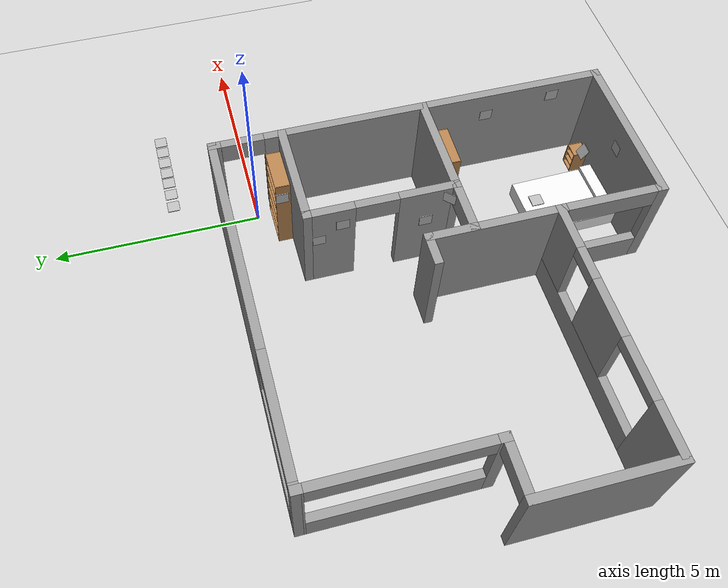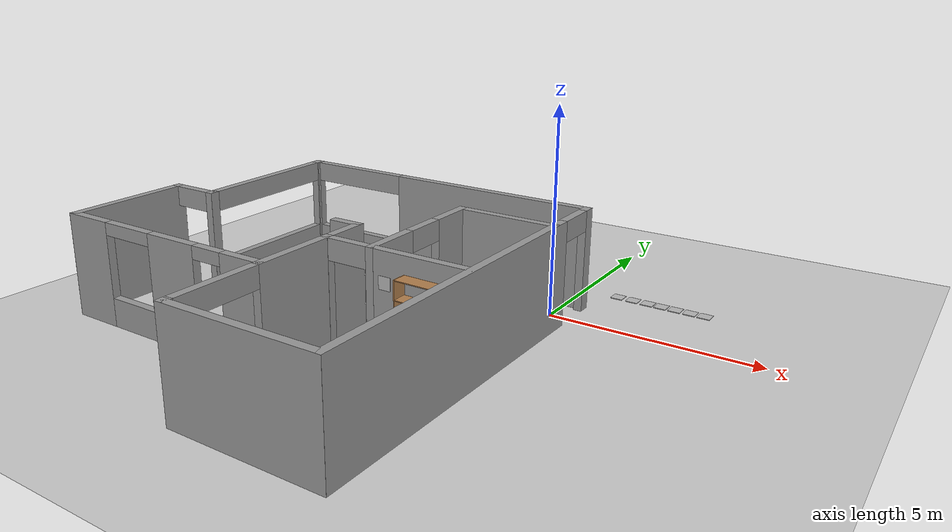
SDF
<sdf version="1.6">
 <world name="GrannyAnnie">
  <model name="ground_plane">
   <static>1</static>
   <link name="link">
    <collision name="collision">
     <geometry><plane><normal>0 0 1</normal><size>100 100</size></plane></geometry>
     <surface><friction><ode><mu>100</mu><mu2>50</mu2></ode></friction></surface>
    </collision>
    <visual name="visual">
     <cast_shadows>0</cast_shadows>
     <geometry><plane><normal>0 0 1</normal><size>100 100</size></plane></geometry>
     <material>
      <script><uri>file://media/materials/scripts/gazebo.material</uri><name>Gazebo/Grey</name></script>
     </material>
    </visual>
    <velocity_decay><linear>0</linear><angular>0</angular></velocity_decay>
   </link>
  </model>
  <model name="tag_3">
   <pose>-2.103 -1.589 2.006 3.14159 -1.57079 3.14159</pose>
   <static>1</static>
   <link name="link">
    <collision name="collision"><geometry><box><size>0.3 0.3 0.02</size></box></geometry></collision>
    <visual name="visual">
     <geometry><box><size>0.3 0.3 0.02</size></box></geometry>
     <material>
      <script><uri>file://tags_material/scripts/tags.material</uri><name>Tag36_11_00003</name></script>
     </material>
    </visual>
   </link>
   <static>0</static>
  </model>
  <model name="tag_5">
   <pose>-0.839 -0.497 1.7 3.14159 -1.57079 3.14159</pose>
   <static>1</static>
   <link name="link">
    <collision name="collision"><geometry><box><size>0.3 0.3 0.02</size></box></geometry></collision>
    <visual name="visual">
     <geometry><box><size>0.3 0.3 0.02</size></box></geometry>
     <material>
      <script><uri>file://tags_material/scripts/tags.material</uri><name>Tag36_11_00005</name></script>
     </material>
    </visual>
   </link>
   <static>0</static>
  </model>
  <model name="tag_7">
   <pose>-2.101 -1.051 1.587 3.14159 -1.57079 3.14159</pose>
   <static>1</static>
   <link name="link">
    <collision name="collision"><geometry><box><size>0.3 0.3 0.02</size></box></geometry></collision>
    <visual name="visual">
     <geometry><box><size>0.3 0.3 0.02</size></box></geometry>
     <material>
      <script><uri>file://tags_material/scripts/tags.material</uri><name>Tag36_11_00007</name></script>
     </material>
    </visual>
   </link>
   <static>0</static>
  </model>
  <model name="tag_8">
   <pose>0.294 -5.82 1.872 3.14159 -1.57079 3.14159</pose>
   <static>1</static>
   <link name="link">
    <collision name="collision"><geometry><box><size>0.3 0.3 0.02</size></box></geometry></collision>
    <visual name="visual">
     <geometry><box><size>0.3 0.3 0.02</size></box></geometry>
     <material>
      <script><uri>file://tags_material/scripts/tags.material</uri><name>Tag36_11_00008</name></script>
     </material>
    </visual>
   </link>
   <static>0</static>
  </model>
  <model name="tag_9">
   <pose>-1.435 -8.478 1.8 1.57079 -1.57079 3.14159</pose>
   <static>1</static>
   <link name="link">
    <collision name="collision"><geometry><box><size>0.3 0.3 0.02</size></box></geometry></collision>
    <visual name="visual">
     <geometry><box><size>0.3 0.3 0.02</size></box></geometry>
     <material>
      <script><uri>file://tags_material/scripts/tags.material</uri><name>Tag36_11_00009</name></script>
     </material>
    </visual>
   </link>
   <static>0</static>
  </model>
  <model name="tag_10">
   <pose>-1.614 -4.295 1.8 -1.57079 -1.57079 3.14159</pose>
   <static>1</static>
   <link name="link">
    <collision name="collision"><geometry><box><size>0.3 0.3 0.02</size></box></geometry></collision>
    <visual name="visual">
     <geometry><box><size>0.3 0.3 0.02</size></box></geometry>
     <material>
      <script><uri>file://tags_material/scripts/tags.material</uri><name>Tag36_11_00010</name></script>
     </material>
    </visual>
   </link>
   <static>0</static>
  </model>
  <model name="tag_13">
   <pose>-2.11 -3.543 1.51 3.14159 -1.57079 3.14159</pose>
   <static>1</static>
   <link name="link">
    <collision name="collision"><geometry><box><size>0.02 0.3 0.3</size></box></geometry></collision>
    <visual name="visual">
     <geometry><box><size>0.3 0.3 0.02</size></box></geometry>
     <material>
      <script><uri>file://tags_material/scripts/tags.material</uri><name>Tag36_11_00013</name></script>
     </material>
    </visual>
   </link>
   <static>0</static>
  </model>
  <model name="tag_18">
   <pose>-1.53973 -6.69 0.496 3.14159 0.003459 3.14159</pose>
   <static>1</static>
   <link name="link">
    <collision name="collision"><geometry><box><size>0.3 0.3 0.02</size></box></geometry></collision>
    <visual name="visual">
     <geometry><box><size>0.3 0.3 0.02</size></box></geometry>
     <material>
      <script><uri>file://tags_material/scripts/tags.material</uri><name>Tag36_11_00018</name></script>
     </material>
    </visual>
   </link>
   <static>0</static>
  </model>
  <model name="tag_20">
   <pose>0.293 -7.471 2.131 3.14159 -1.57079 3.14159</pose>
   <static>1</static>
   <link name="link">
    <collision name="collision"><geometry><box><size>0.3 0.3 0.02</size></box></geometry></collision>
    <visual name="visual">
     <geometry><box><size>0.3 0.3 0.02</size></box></geometry>
     <material>
      <script><uri>file://tags_material/scripts/tags.material</uri><name>Tag36_11_00020</name></script>
     </material>
    </visual>
   </link>
   <static>0</static>
  </model>
  <model name="tag_21">
   <pose>-2.201 -4.003 2.293 2.36727 -1.57079 3.14057</pose>
   <static>1</static>
   <link name="link">
    <collision name="collision"><geometry><box><size>0.3 0.3 0.02</size></box></geometry></collision>
    <visual name="visual">
     <geometry><box><size>0.3 0.3 0.02</size></box></geometry>
     <material>
      <script><uri>file://tags_material/scripts/tags.material</uri><name>Tag36_11_00021</name></script>
     </material>
    </visual>
   </link>
   <static>0</static>
  </model>
  <model name="tag_22">
   <pose>-0.559 -8.289 0.74 0 -1.03 -1.5708</pose>
   <static>1</static>
   <link name="link">
    <collision name="collision"><geometry><box><size>0.3 0.3 0.02</size></box></geometry></collision>
    <visual name="visual">
     <geometry><box><size>0.3 0.3 0.02</size></box></geometry>
     <material>
      <script><uri>file://tags_material/scripts/tags.material</uri><name>Tag36_11_00022</name></script>
     </material>
    </visual>
   </link>
   <static>0</static>
  </model>
  <model name="tag_23">
   <pose>-2.15869 -6.23805 0.109419 -0.788117 0.051906 -0.052114</pose>
   <static>1</static>
   <link name="link">
    <collision name="collision"><geometry><box><size>0.3 0.3 0.02</size></box></geometry></collision>
    <visual name="visual">
     <geometry><box><size>0.3 0.3 0.02</size></box></geometry>
     <material>
      <script><uri>file://tags_material/scripts/tags.material</uri><name>Tag36_11_00023</name></script>
     </material>
    </visual>
   </link>
   <static>0</static>
  </model>
  <model name="tag_24">
   <pose>0.873407 2 0 0 -0 0</pose>
   <static>1</static>
   <link name="link">
    <collision name="collision"><geometry><box><size>0.3 0.3 0.02</size></box></geometry></collision>
    <visual name="visual">
     <geometry><box><size>0.3 0.3 0.02</size></box></geometry>
     <material>
      <script><uri>file://tags_material/scripts/tags.material</uri><name>Tag36_11_00024</name></script>
     </material>
    </visual>
   </link>
   <static>0</static>
  </model>
  <model name="tag_25">
   <pose>1.98268 2 0 0 -0 0</pose>
   <static>1</static>
   <link name="link">
    <collision name="collision"><geometry><box><size>0.3 0.3 0.02</size></box></geometry></collision>
    <visual name="visual">
     <geometry><box><size>0.3 0.3 0.02</size></box></geometry>
     <material>
      <script><uri>file://tags_material/scripts/tags.material</uri><name>Tag36_11_00025</name></script>
     </material>
    </visual>
   </link>
   <static>0</static>
  </model>
  <model name="tag_26">
   <pose>3.04621 2 0 0 -0 0</pose>
   <static>1</static>
   <link name="link">
    <collision name="collision"><geometry><box><size>0.3 0.3 0.02</size></box></geometry></collision>
    <visual name="visual">
     <geometry><box><size>0.3 0.3 0.02</size></box></geometry>
     <material>
      <script><uri>file://tags_material/scripts/tags.material</uri><name>Tag36_11_00026</name></script>
     </material>
    </visual>
   </link>
   <static>0</static>
  </model>
  <model name="tag_27">
   <pose>1.2631 2 0 0 -0 0</pose>
   <static>1</static>
   <link name="link">
    <collision name="collision"><geometry><box><size>0.3 0.3 0.02</size></box></geometry></collision>
    <visual name="visual">
     <geometry><box><size>0.3 0.3 0.02</size></box></geometry>
     <material>
      <script><uri>file://tags_material/scripts/tags.material</uri><name>Tag36_11_00027</name></script>
     </material>
    </visual>
   </link>
   <static>0</static>
  </model>
  <model name="tag_29">
   <pose>2.69424 2 0 0 -0 0</pose>
   <static>1</static>
   <link name="link">
    <collision name="collision"><geometry><box><size>0.3 0.3 0.02</size></box></geometry></collision>
    <visual name="visual">
     <geometry><box><size>0.3 0.3 0.02</size></box></geometry>
     <material>
      <script><uri>file://tags_material/scripts/tags.material</uri><name>Tag36_11_00029</name></script>
     </material>
    </visual>
   </link>
   <static>0</static>
  </model>
  <model name="tag_30">
   <pose>1.64316 2 0 0 -0 0</pose>
   <static>1</static>
   <link name="link">
    <collision name="collision"><geometry><box><size>0.3 0.3 0.02</size></box></geometry></collision>
    <visual name="visual">
     <geometry><box><size>0.3 0.3 0.02</size></box></geometry>
     <material>
      <script><uri>file://tags_material/scripts/tags.material</uri><name>Tag36_11_00030</name></script>
     </material>
    </visual>
   </link>
   <static>0</static>
  </model>
  <model name="tag_31">
   <pose>2.33442 2 0 0 -0 0</pose>
   <static>1</static>
   <link name="link">
    <collision name="collision"><geometry><box><size>0.3 0.3 0.02</size></box></geometry></collision>
    <visual name="visual">
     <geometry><box><size>0.3 0.3 0.02</size></box></geometry>
     <material>
      <script><uri>file://tags_material/scripts/tags.material</uri><name>Tag36_11_00031</name></script>
     </material>
    </visual>
   </link>
   <static>0</static>
  </model>
  <model name="RoCKIn@Home">
   <link name="Wall_12">
    <collision name="Wall_12_Collision">
     <geometry><box><size>2.6 0.2 2.5</size></box></geometry>
     <pose>0 0 1.25 0 -0 0</pose>
    </collision>
    <visual name="Wall_12_Visual">
     <pose>0 0 1.25 0 -0 0</pose>
     <geometry><box><size>2.6 0.2 2.5</size></box></geometry>
     <material>
      <script><uri>file://media/materials/scripts/gazebo.material</uri><name>Gazebo/Grey</name></script>
     </material>
    </visual>
    <velocity_decay><linear>0</linear><angular>0</angular></velocity_decay>
    <pose>7.8 1.205 0 0 -0 1.5708</pose>
   </link>
   <link name="Wall_14">
    <pose>6.0996 2.4048 0 0 -0 3.14159</pose>
    <visual name="Wall_14_Visual_0">
     <pose>-1.20789 0 1.25 0 -0 0</pose>
     <geometry><box><size>1.18422 0.2 2.5</size></box></geometry>
     <material>
      <script><uri>file://media/materials/scripts/gazebo.material</uri><name>Gazebo/Grey</name></script>
     </material>
    </visual>
    <collision name="Wall_14_Collision_0">
     <geometry><box><size>1.18422 0.2 2.5</size></box></geometry>
     <pose>-1.20789 0 1.25 0 -0 0</pose>
    </collision>
    <visual name="Wall_14_Visual_1">
     <pose>1.09211 0 1.25 0 -0 0</pose>
     <geometry><box><size>1.41579 0.2 2.5</size></box></geometry>
     <material>
      <script><uri>file://media/materials/scripts/gazebo.material</uri><name>Gazebo/Grey</name></script>
     </material>
    </visual>
    <collision name="Wall_14_Collision_1">
     <geometry><box><size>1.41579 0.2 2.5</size></box></geometry>
     <pose>1.09211 0 1.25 0 -0 0</pose>
    </collision>
    <visual name="Wall_14_Visual_2">
     <pose>-0.115785 0 2.25 0 -0 0</pose>
     <geometry><box><size>1 0.2 0.5</size></box></geometry>
     <material>
      <script><uri>file://media/materials/scripts/gazebo.material</uri><name>Gazebo/Grey</name></script>
     </material>
    </visual>
    <collision name="Wall_14_Collision_2">
     <geometry><box><size>1 0.2 0.5</size></box></geometry>
     <pose>-0.115785 0 2.25 0 -0 0</pose>
    </collision>
    <velocity_decay><linear>0</linear><angular>0</angular></velocity_decay>
   </link>
   <link name="Wall_16">
    <collision name="Wall_16_Collision">
     <geometry><box><size>2.60492 0.2 2.5</size></box></geometry>
     <pose>0 0 1.25 0 -0 0</pose>
    </collision>
    <visual name="Wall_16_Visual">
     <pose>0 0 1.25 0 -0 0</pose>
     <geometry><box><size>2.60492 0.2 2.5</size></box></geometry>
     <material>
      <script><uri>file://media/materials/scripts/gazebo.material</uri><name>Gazebo/Grey</name></script>
     </material>
    </visual>
    <velocity_decay><linear>0</linear><angular>0</angular></velocity_decay>
    <pose>4.39903 1.20277 0 0 -0 1.5708</pose>
   </link>
   <link name="Wall_18">
    <collision name="Wall_18_Collision">
     <geometry><box><size>3.8 0.2 2.5</size></box></geometry>
     <pose>0 0 1.25 0 -0 0</pose>
    </collision>
    <visual name="Wall_18_Visual">
     <pose>0 0 1.25 0 -0 0</pose>
     <geometry><box><size>3.8 0.2 2.5</size></box></geometry>
     <material>
      <script><uri>file://media/materials/scripts/gazebo.material</uri><name>Gazebo/Grey</name></script>
     </material>
    </visual>
    <velocity_decay><linear>0</linear><angular>0</angular></velocity_decay>
    <pose>0.024876 1.80003 0 0 -0 1.5708</pose>
   </link>
   <link name="Wall_2">
    <pose>4.7266 0 0 0 -0 0</pose>
    <visual name="Wall_2_Visual_0">
     <pose>-0.649274 0 1.25 0 -0 0</pose>
     <geometry><box><size>8.30145 0.2 2.5</size></box></geometry>
     <material>
      <script><uri>file://media/materials/scripts/gazebo.material</uri><name>Gazebo/Grey</name></script>
     </material>
    </visual>
    <collision name="Wall_2_Collision_0">
     <geometry><box><size>8.30145 0.2 2.5</size></box></geometry>
     <pose>-0.649274 0 1.25 0 -0 0</pose>
    </collision>
    <visual name="Wall_2_Visual_1">
     <pose>4.65073 0 1.25 0 -0 0</pose>
     <geometry><box><size>0.298547 0.2 2.5</size></box></geometry>
     <material>
      <script><uri>file://media/materials/scripts/gazebo.material</uri><name>Gazebo/Grey</name></script>
     </material>
    </visual>
    <collision name="Wall_2_Collision_1">
     <geometry><box><size>0.298547 0.2 2.5</size></box></geometry>
     <pose>4.65073 0 1.25 0 -0 0</pose>
    </collision>
    <visual name="Wall_2_Visual_2">
     <pose>4.00145 0 2.25 0 -0 0</pose>
     <geometry><box><size>1 0.2 0.5</size></box></geometry>
     <material>
      <script><uri>file://media/materials/scripts/gazebo.material</uri><name>Gazebo/Grey</name></script>
     </material>
    </visual>
    <collision name="Wall_2_Collision_2">
     <geometry><box><size>1 0.2 0.5</size></box></geometry>
     <pose>4.00145 0 2.25 0 -0 0</pose>
    </collision>
    <velocity_decay><linear>0</linear><angular>0</angular></velocity_decay>
   </link>
   <link name="Wall_20">
    <pose>2.72456 3.60059 0 0 -0 0</pose>
    <visual name="Wall_20_Visual_0">
     <pose>-2.67396 0 1.25 0 -0 0</pose>
     <geometry><box><size>0.251208 0.2 2.5</size></box></geometry>
     <material>
      <script><uri>file://media/materials/scripts/gazebo.material</uri><name>Gazebo/Grey</name></script>
     </material>
    </visual>
    <collision name="Wall_20_Collision_0">
     <geometry><box><size>0.251208 0.2 2.5</size></box></geometry>
     <pose>-2.67396 0 1.25 0 -0 0</pose>
    </collision>
    <visual name="Wall_20_Visual_1">
     <pose>1.1766 0 1.25 0 -0 0</pose>
     <geometry><box><size>3.24591 0.2 2.5</size></box></geometry>
     <material>
      <script><uri>file://media/materials/scripts/gazebo.material</uri><name>Gazebo/Grey</name></script>
     </material>
    </visual>
    <collision name="Wall_20_Collision_1">
     <geometry><box><size>3.24591 0.2 2.5</size></box></geometry>
     <pose>1.1766 0 1.25 0 -0 0</pose>
    </collision>
    <visual name="Wall_20_Visual_2">
     <pose>-1.49735 0 2.25 0 -0 0</pose>
     <geometry><box><size>2.102 0.2 0.5</size></box></geometry>
     <material>
      <script><uri>file://media/materials/scripts/gazebo.material</uri><name>Gazebo/Grey</name></script>
     </material>
    </visual>
    <collision name="Wall_20_Collision_2">
     <geometry><box><size>2.102 0.2 0.5</size></box></geometry>
     <pose>-1.49735 0 2.25 0 -0 0</pose>
    </collision>
    <visual name="Wall_20_Visual_3">
     <pose>-1.49735 0 0.35 0 -0 0</pose>
     <geometry><box><size>2.102 0.2 0.7</size></box></geometry>
     <material>
      <script><uri>file://media/materials/scripts/gazebo.material</uri><name>Gazebo/Grey</name></script>
     </material>
    </visual>
    <collision name="Wall_20_Collision_3">
     <geometry><box><size>2.102 0.2 0.3</size></box></geometry>
     <pose>-1.49735 0 0.35 0 -0 0</pose>
    </collision>
    <velocity_decay><linear>0</linear><angular>0</angular></velocity_decay>
   </link>
   <link name="Wall_22">
    <pose>4.39856 3.00206 0 0 -0 1.5708</pose>
    <visual name="Wall_22_Visual_0">
     <pose>-0.601085 0 1.25 0 -0 0</pose>
     <geometry><box><size>0.194709 0.2 2.5</size></box></geometry>
     <material>
      <script><uri>file://media/materials/scripts/gazebo.material</uri><name>Gazebo/Grey</name></script>
     </material>
    </visual>
    <collision name="Wall_22_Collision_0">
     <geometry><box><size>0.194709 0.2 2.5</size></box></geometry>
     <pose>-0.601085 0 1.25 0 -0 0</pose>
    </collision>
    <visual name="Wall_22_Visual_1">
     <pose>0.597355 0 1.25 0 -0 0</pose>
     <geometry><box><size>0.202171 0.2 2.5</size></box></geometry>
     <material>
      <script><uri>file://media/materials/scripts/gazebo.material</uri><name>Gazebo/Grey</name></script>
     </material>
    </visual>
    <collision name="Wall_22_Collision_1">
     <geometry><box><size>0.202171 0.2 2.5</size></box></geometry>
     <pose>0.597355 0 1.25 0 -0 0</pose>
    </collision>
    <visual name="Wall_22_Visual_2">
     <pose>-0.003731 0 2.25 0 -0 0</pose>
     <geometry><box><size>1 0.2 0.5</size></box></geometry>
     <material>
      <script><uri>file://media/materials/scripts/gazebo.material</uri><name>Gazebo/Grey</name></script>
     </material>
    </visual>
    <collision name="Wall_22_Collision_2">
     <geometry><box><size>1 0.2 0.5</size></box></geometry>
     <pose>-0.003731 0 2.25 0 -0 0</pose>
    </collision>
    <velocity_decay><linear>0</linear><angular>0</angular></velocity_decay>
   </link>
   <link name="Wall_24">
    <pose>7.42703 8.20242 0 0 -0 3.14159</pose>
    <visual name="Wall_24_Visual_0">
     <pose>-1.97924 0 1.25 0 -0 0</pose>
     <geometry><box><size>0.241529 0.2 2.5</size></box></geometry>
     <material>
      <script><uri>file://media/materials/scripts/gazebo.material</uri><name>Gazebo/Grey</name></script>
     </material>
    </visual>
    <collision name="Wall_24_Collision_0">
     <geometry><box><size>0.241529 0.2 2.5</size></box></geometry>
     <pose>-1.97924 0 1.25 0 -0 0</pose>
    </collision>
    <visual name="Wall_24_Visual_1">
     <pose>1.97395 0 1.25 0 -0 0</pose>
     <geometry><box><size>0.252091 0.2 2.5</size></box></geometry>
     <material>
      <script><uri>file://media/materials/scripts/gazebo.material</uri><name>Gazebo/Grey</name></script>
     </material>
    </visual>
    <collision name="Wall_24_Collision_1">
     <geometry><box><size>0.252091 0.2 2.5</size></box></geometry>
     <pose>1.97395 0 1.25 0 -0 0</pose>
    </collision>
    <visual name="Wall_24_Visual_2">
     <pose>-0.005281 0 2.25 0 -0 0</pose>
     <geometry><box><size>3.70638 0.2 0.5</size></box></geometry>
     <material>
      <script><uri>file://media/materials/scripts/gazebo.material</uri><name>Gazebo/Grey</name></script>
     </material>
    </visual>
    <collision name="Wall_24_Collision_2">
     <geometry><box><size>3.70638 0.2 0.5</size></box></geometry>
     <pose>-0.005281 0 2.25 0 -0 0</pose>
    </collision>
    <visual name="Wall_24_Visual_3">
     <pose>-0.005281 0 0.35 0 -0 0</pose>
     <geometry><box><size>3.70638 0.2 0.7</size></box></geometry>
     <material>
      <script><uri>file://media/materials/scripts/gazebo.material</uri><name>Gazebo/Grey</name></script>
     </material>
    </visual>
    <collision name="Wall_24_Collision_3">
     <geometry><box><size>3.70638 0.2 0.7</size></box></geometry>
     <pose>-0.005281 0 0.35 0 -0 0</pose>
    </collision>
    <velocity_decay><linear>0</linear><angular>0</angular></velocity_decay>
   </link>
   <link name="Wall_28">
    <collision name="Wall_28_Collision">
     <geometry><box><size>3.2 0.2 2.5</size></box></geometry>
     <pose>0 0 1.25 0 -0 0</pose>
    </collision>
    <visual name="Wall_28_Visual">
     <pose>0 0 1.25 0 -0 0</pose>
     <geometry><box><size>3.2 0.2 2.5</size></box></geometry>
     <material>
      <script><uri>file://media/materials/scripts/gazebo.material</uri><name>Gazebo/Grey</name></script>
     </material>
    </visual>
    <velocity_decay><linear>0</linear><angular>0</angular></velocity_decay>
    <pose>3.92571 9.40229 0 0 -0 3.14159</pose>
   </link>
   <link name="Wall_30">
    <pose>2.42541 6.50159 0 0 0 -1.5708</pose>
    <visual name="Wall_30_Visual_0">
     <pose>-2.363 0 1.25 0 -0 0</pose>
     <geometry><box><size>1.27269 0.2 2.5</size></box></geometry>
     <material>
      <script><uri>file://media/materials/scripts/gazebo.material</uri><name>Gazebo/Grey</name></script>
     </material>
    </visual>
    <collision name="Wall_30_Collision_0">
     <geometry><box><size>1.27269 0.2 2.5</size></box></geometry>
     <pose>-2.363 0 1.25 0 -0 0</pose>
    </collision>
    <visual name="Wall_30_Visual_1">
     <pose>0.636346 0 0.35 0 -0 0</pose>
     <geometry><box><size>4.726 0.2 0.7</size></box></geometry>
     <material>
      <script><uri>file://media/materials/scripts/gazebo.material</uri><name>Gazebo/Grey</name></script>
     </material>
    </visual>
    <collision name="Wall_30_Collision_1">
     <geometry><box><size>4.726 0.2 0.7</size></box></geometry>
     <pose>0.636346 0 0.35 0 -0 0</pose>
    </collision>
    <visual name="Wall_30_Visual_2">
     <pose>0.36359 0 1.6 0 -0 0</pose>
     <geometry><box><size>1.38049 0.2 1.8</size></box></geometry>
     <material>
      <script><uri>file://media/materials/scripts/gazebo.material</uri><name>Gazebo/Grey</name></script>
     </material>
    </visual>
    <collision name="Wall_30_Collision_2">
     <geometry><box><size>1.38049 0.2 1.8</size></box></geometry>
     <pose>0.36359 0 1.6 0 -0 0</pose>
    </collision>
    <visual name="Wall_30_Visual_3">
     <pose>2.42659 0 1.6 0 -0 0</pose>
     <geometry><box><size>1.14551 0.2 1.8</size></box></geometry>
     <material>
      <script><uri>file://media/materials/scripts/gazebo.material</uri><name>Gazebo/Grey</name></script>
     </material>
    </visual>
    <collision name="Wall_30_Collision_3">
     <geometry><box><size>1.14551 0.2 1.8</size></box></geometry>
     <pose>2.42659 0 1.6 0 -0 0</pose>
    </collision>
    <visual name="Wall_30_Visual_4">
     <pose>-1.02665 0 2.35 0 -0 0</pose>
     <geometry><box><size>1.4 0.2 0.3</size></box></geometry>
     <material>
      <script><uri>file://media/materials/scripts/gazebo.material</uri><name>Gazebo/Grey</name></script>
     </material>
    </visual>
    <collision name="Wall_30_Collision_4">
     <geometry><box><size>1.4 0.2 0.3</size></box></geometry>
     <pose>-1.02665 0 2.35 0 -0 0</pose>
    </collision>
    <visual name="Wall_30_Visual_5">
     <pose>1.45383 0 2.35 0 -0 0</pose>
     <geometry><box><size>0.8 0.2 0.3</size></box></geometry>
     <material>
      <script><uri>file://media/materials/scripts/gazebo.material</uri><name>Gazebo/Grey</name></script>
     </material>
    </visual>
    <collision name="Wall_30_Collision_5">
     <geometry><box><size>0.8 0.2 0.3</size></box></geometry>
     <pose>1.45383 0 2.35 0 -0 0</pose>
    </collision>
    <velocity_decay><linear>0</linear><angular>0</angular></velocity_decay>
   </link>
   <link name="Wall_32">
    <pose>5.42654 8.80216 0 0 0 -1.5708</pose>
    <visual name="Wall_32_Visual_0">
     <pose>-0.599775 0 1.25 0 -0 0</pose>
     <geometry><box><size>0.199231 0.2 2.5</size></box></geometry>
     <material>
      <script><uri>file://media/materials/scripts/gazebo.material</uri><name>Gazebo/Grey</name></script>
     </material>
    </visual>
    <collision name="Wall_32_Collision_0">
     <geometry><box><size>0.199231 0.2 2.5</size></box></geometry>
     <pose>-0.599775 0 1.25 0 -0 0</pose>
    </collision>
    <visual name="Wall_32_Visual_1">
     <pose>0.599615 0 1.25 0 -0 0</pose>
     <geometry><box><size>0.199549 0.2 2.5</size></box></geometry>
     <material>
      <script><uri>file://media/materials/scripts/gazebo.material</uri><name>Gazebo/Grey</name></script>
     </material>
    </visual>
    <collision name="Wall_32_Collision_1">
     <geometry><box><size>0.199549 0.2 2.5</size></box></geometry>
     <pose>0.599615 0 1.25 0 -0 0</pose>
    </collision>
    <visual name="Wall_32_Visual_2">
     <pose>-0.000159 0 2.25 0 -0 0</pose>
     <geometry><box><size>1 0.2 0.5</size></box></geometry>
     <material>
      <script><uri>file://media/materials/scripts/gazebo.material</uri><name>Gazebo/Grey</name></script>
     </material>
    </visual>
    <collision name="Wall_32_Collision_2">
     <geometry><box><size>1 0.2 0.5</size></box></geometry>
     <pose>-0.000159 0 2.25 0 -0 0</pose>
    </collision>
    <velocity_decay><linear>0</linear><angular>0</angular></velocity_decay>
   </link>
   <link name="Wall_35">
    <collision name="Wall_35_Collision">
     <geometry><box><size>0.8 0.2 2.5</size></box></geometry>
     <pose>0 0 1.25 0 -0 0</pose>
    </collision>
    <visual name="Wall_35_Visual">
     <pose>0 0 1.25 0 -0 0</pose>
     <geometry><box><size>0.8 0.2 2.5</size></box></geometry>
     <material>
      <script><uri>file://media/materials/scripts/gazebo.material</uri><name>Gazebo/Grey</name></script>
     </material>
    </visual>
    <velocity_decay><linear>0</linear><angular>0</angular></velocity_decay>
    <pose>5.42451 3.90082 0 0 -0 1.5708</pose>
   </link>
   <link name="Wall_8">
    <pose>9.42875 4.1026 0 0 -0 1.5708</pose>
    <visual name="Wall_8_Visual_0">
     <pose>-1.48935 0 1.25 0 -0 0</pose>
     <geometry><box><size>5.42201 0.2 2.5</size></box></geometry>
     <material>
      <script><uri>file://media/materials/scripts/gazebo.material</uri><name>Gazebo/Grey</name></script>
     </material>
    </visual>
    <collision name="Wall_8_Collision_0">
     <geometry><box><size>5.42201 0.2 2.5</size></box></geometry>
     <pose>-1.48935 0 1.25 0 -0 0</pose>
    </collision>
    <visual name="Wall_8_Visual_1">
     <pose>4.07465 0 1.25 0 -0 0</pose>
     <geometry><box><size>0.251416 0.2 2.5</size></box></geometry>
     <material>
      <script><uri>file://media/materials/scripts/gazebo.material</uri><name>Gazebo/Grey</name></script>
     </material>
    </visual>
    <collision name="Wall_8_Collision_1">
     <geometry><box><size>0.251416 0.2 2.5</size></box></geometry>
     <pose>4.07465 0 1.25 0 -0 0</pose>
    </collision>
    <visual name="Wall_8_Visual_2">
     <pose>2.5853 0 2.25 0 -0 0</pose>
     <geometry><box><size>2.72728 0.2 0.5</size></box></geometry>
     <material>
      <script><uri>file://media/materials/scripts/gazebo.material</uri><name>Gazebo/Grey</name></script>
     </material>
    </visual>
    <collision name="Wall_8_Collision_2">
     <geometry><box><size>2.72728 0.2 0.5</size></box></geometry>
     <pose>2.5853 0 2.25 0 -0 0</pose>
    </collision>
    <visual name="Wall_8_Visual_3">
     <pose>2.5853 0 0.35 0 -0 0</pose>
     <geometry><box><size>2.72728 0.2 0.7</size></box></geometry>
     <material>
      <script><uri>file://media/materials/scripts/gazebo.material</uri><name>Gazebo/Grey</name></script>
     </material>
    </visual>
    <collision name="Wall_8_Collision_3">
     <geometry><box><size>2.72728 0.2 0.7</size></box></geometry>
     <pose>2.5853 0 0.35 0 -0 0</pose>
    </collision>
    <velocity_decay><linear>0</linear><angular>0</angular></velocity_decay>
   </link>
   <static>1</static>
   <pose>0.4 -8.6 0 0 -0 1.57</pose>
  </model>
  <model name="estanteria_1">
   <link name="estanteria_link">
    <inertial>
     <pose>0 0 1.046 0 -0 0</pose>
     <mass>10</mass>
     <inertia><ixx>3.12544</ixx><ixy>0</ixy><ixz>0</ixz><iyy>4.16584</iyy><iyz>0</iyz><izz>1.1204</izz></inertia>
    </inertial>
    <collision name="estanteria_link_collision">
     <pose>0 0 0.01 0 -0 0</pose>
     <geometry><box><size>1 0.35 0.02</size></box></geometry>
     <surface><friction><ode><mu>1</mu><mu2>1</mu2></ode></friction></surface>
    </collision>
    <collision name="estanteria_link_collision_basal_1_link">
     <pose>0 0 0.41 0 -0 0</pose>
     <geometry><box><size>1 0.35 0.02</size></box></geometry>
     <surface><friction><ode><mu>1</mu><mu2>1</mu2></ode></friction></surface>
     <surface><friction><ode><mu>1</mu><mu2>1</mu2></ode></friction></surface>
    </collision>
    <collision name="estanteria_link_collision_basal_2_link">
     <pose>0 0 0.83 0 -0 0</pose>
     <geometry><box><size>1 0.35 0.02</size></box></geometry>
     <surface><friction><ode><mu>1</mu><mu2>1</mu2></ode></friction></surface>
     <surface><friction><ode><mu>1</mu><mu2>1</mu2></ode></friction></surface>
    </collision>
    <collision name="estanteria_link_collision_basal_3_link">
     <pose>0 0 1.25 0 -0 0</pose>
     <geometry><box><size>1 0.35 0.02</size></box></geometry>
     <surface><friction><ode><mu>1</mu><mu2>1</mu2></ode></friction></surface>
     <surface><friction><ode><mu>1</mu><mu2>1</mu2></ode></friction></surface>
    </collision>
    <collision name="estanteria_link_collision_basal_4_link">
     <pose>0 0 1.67 0 -0 0</pose>
     <geometry><box><size>1 0.35 0.02</size></box></geometry>
     <surface><friction><ode><mu>1</mu><mu2>1</mu2></ode></friction></surface>
     <surface><friction><ode><mu>1</mu><mu2>1</mu2></ode></friction></surface>
    </collision>
    <collision name="estanteria_link_collision_basal_5_link">
     <pose>0 0 2.09 0 -0 0</pose>
     <geometry><box><size>1 0.35 0.02</size></box></geometry>
     <surface><friction><ode><mu>1</mu><mu2>1</mu2></ode></friction></surface>
     <surface><friction><ode><mu>1</mu><mu2>1</mu2></ode></friction></surface>
    </collision>
    <collision name="estanteria_link_collision_lateral_1_link">
     <pose>0.51 0 1.05 0 -0 0</pose>
     <geometry><box><size>0.02 0.35 2.1</size></box></geometry>
     <surface><friction><ode><mu>1</mu><mu2>1</mu2></ode></friction></surface>
     <surface><friction><ode><mu>1</mu><mu2>1</mu2></ode></friction></surface>
    </collision>
    <collision name="estanteria_link_collision_lateral_2_link">
     <pose>-0.51 0 1.05 0 -0 0</pose>
     <geometry><box><size>0.02 0.35 2.1</size></box></geometry>
     <surface><friction><ode><mu>1</mu><mu2>1</mu2></ode></friction></surface>
     <surface><friction><ode><mu>1</mu><mu2>1</mu2></ode></friction></surface>
    </collision>
    <visual name="estanteria_link_visual">
     <pose>0 0 0.01 0 -0 0</pose>
     <geometry><box><size>1 0.35 0.02</size></box></geometry>
     <material><script><name>Gazebo/Wood</name><uri>__default__</uri></script></material>
    </visual>
    <visual name="estanteria_link_visual_basal_1_link">
     <pose>0 0 0.41 0 -0 0</pose>
     <geometry><box><size>1 0.35 0.02</size></box></geometry>
     <material><script><name>Gazebo/Wood</name><uri>__default__</uri></script></material>
    </visual>
    <visual name="estanteria_link_visual_basal_2_link">
     <pose>0 0 0.83 0 -0 0</pose>
     <geometry><box><size>1 0.35 0.02</size></box></geometry>
     <material><script><name>Gazebo/Wood</name><uri>__default__</uri></script></material>
    </visual>
    <visual name="estanteria_link_visual_basal_3_link">
     <pose>0 0 1.25 0 -0 0</pose>
     <geometry><box><size>1 0.35 0.02</size></box></geometry>
     <material><script><name>Gazebo/Wood</name><uri>__default__</uri></script></material>
    </visual>
    <visual name="estanteria_link_visual_basal_4_link">
     <pose>0 0 1.67 0 -0 0</pose>
     <geometry><box><size>1 0.35 0.02</size></box></geometry>
     <material><script><name>Gazebo/Wood</name><uri>__default__</uri></script></material>
    </visual>
    <visual name="estanteria_link_visual_basal_5_link">
     <pose>0 0 2.09 0 -0 0</pose>
     <geometry><box><size>1 0.35 0.02</size></box></geometry>
     <material><script><name>Gazebo/Wood</name><uri>__default__</uri></script></material>
    </visual>
    <visual name="estanteria_link_visual_lateral_1_link">
     <pose>0.51 0 1.05 0 -0 0</pose>
     <geometry><box><size>0.02 0.35 2.1</size></box></geometry>
     <material><script><name>Gazebo/Wood</name><uri>__default__</uri></script></material>
    </visual>
    <visual name="estanteria_link_visual_lateral_2_link">
     <pose>-0.51 0 1.05 0 -0 0</pose>
     <geometry><box><size>0.02 0.35 2.1</size></box></geometry>
     <material><script><name>Gazebo/Wood</name><uri>__default__</uri></script></material>
    </visual>
    <velocity_decay><linear>0</linear><angular>0</angular></velocity_decay>
    <velocity_decay><linear>0</linear><angular>0</angular></velocity_decay>
    <velocity_decay><linear>0</linear><angular>0</angular></velocity_decay>
    <velocity_decay><linear>0</linear><angular>0</angular></velocity_decay>
    <velocity_decay><linear>0</linear><angular>0</angular></velocity_decay>
    <velocity_decay><linear>0</linear><angular>0</angular></velocity_decay>
    <velocity_decay><linear>0</linear><angular>0</angular></velocity_decay>
    <velocity_decay><linear>0</linear><angular>0</angular></velocity_decay>
    <self_collide>1</self_collide>
   </link>
   <pose>-0.300683 -0.520366 3.9e-05 1.6e-05 7.3e-05 0.002372</pose>
   <static>0</static>
  </model>
  <model name="estanteria_2">
   <link name="estanteria_link">
    <inertial>
     <pose>0 0 1.046 0 -0 0</pose>
     <mass>10</mass>
     <inertia><ixx>3.12544</ixx><ixy>0</ixy><ixz>0</ixz><iyy>4.16584</iyy><iyz>0</iyz><izz>1.1204</izz></inertia>
    </inertial>
    <collision name="estanteria_link_collision">
     <pose>0 0 0.01 0 -0 0</pose>
     <geometry><box><size>1 0.35 0.02</size></box></geometry>
     <surface><friction><ode><mu>1</mu><mu2>1</mu2></ode></friction></surface>
    </collision>
    <collision name="estanteria_link_collision_basal_1_link">
     <pose>0 0 0.41 0 -0 0</pose>
     <geometry><box><size>1 0.35 0.02</size></box></geometry>
     <surface><friction><ode><mu>1</mu><mu2>1</mu2></ode></friction></surface>
     <surface><friction><ode><mu>1</mu><mu2>1</mu2></ode></friction></surface>
    </collision>
    <collision name="estanteria_link_collision_basal_2_link">
     <pose>0 0 0.83 0 -0 0</pose>
     <geometry><box><size>1 0.35 0.02</size></box></geometry>
     <surface><friction><ode><mu>1</mu><mu2>1</mu2></ode></friction></surface>
     <surface><friction><ode><mu>1</mu><mu2>1</mu2></ode></friction></surface>
    </collision>
    <collision name="estanteria_link_collision_basal_3_link">
     <pose>0 0 1.25 0 -0 0</pose>
     <geometry><box><size>1 0.35 0.02</size></box></geometry>
     <surface><friction><ode><mu>1</mu><mu2>1</mu2></ode></friction></surface>
     <surface><friction><ode><mu>1</mu><mu2>1</mu2></ode></friction></surface>
    </collision>
    <collision name="estanteria_link_collision_basal_4_link">
     <pose>0 0 1.67 0 -0 0</pose>
     <geometry><box><size>1 0.35 0.02</size></box></geometry>
     <surface><friction><ode><mu>1</mu><mu2>1</mu2></ode></friction></surface>
     <surface><friction><ode><mu>1</mu><mu2>1</mu2></ode></friction></surface>
    </collision>
    <collision name="estanteria_link_collision_basal_5_link">
     <pose>0 0 2.09 0 -0 0</pose>
     <geometry><box><size>1 0.35 0.02</size></box></geometry>
     <surface><friction><ode><mu>1</mu><mu2>1</mu2></ode></friction></surface>
     <surface><friction><ode><mu>1</mu><mu2>1</mu2></ode></friction></surface>
    </collision>
    <collision name="estanteria_link_collision_lateral_1_link">
     <pose>0.51 0 1.05 0 -0 0</pose>
     <geometry><box><size>0.02 0.35 2.1</size></box></geometry>
     <surface><friction><ode><mu>1</mu><mu2>1</mu2></ode></friction></surface>
     <surface><friction><ode><mu>1</mu><mu2>1</mu2></ode></friction></surface>
    </collision>
    <collision name="estanteria_link_collision_lateral_2_link">
     <pose>-0.51 0 1.05 0 -0 0</pose>
     <geometry><box><size>0.02 0.35 2.1</size></box></geometry>
     <surface><friction><ode><mu>1</mu><mu2>1</mu2></ode></friction></surface>
     <surface><friction><ode><mu>1</mu><mu2>1</mu2></ode></friction></surface>
    </collision>
    <visual name="estanteria_link_visual">
     <pose>0 0 0.01 0 -0 0</pose>
     <geometry><box><size>1 0.35 0.02</size></box></geometry>
     <material><script><name>Gazebo/Wood</name><uri>__default__</uri></script></material>
    </visual>
    <visual name="estanteria_link_visual_basal_1_link">
     <pose>0 0 0.41 0 -0 0</pose>
     <geometry><box><size>1 0.35 0.02</size></box></geometry>
     <material><script><name>Gazebo/Wood</name><uri>__default__</uri></script></material>
    </visual>
    <visual name="estanteria_link_visual_basal_2_link">
     <pose>0 0 0.83 0 -0 0</pose>
     <geometry><box><size>1 0.35 0.02</size></box></geometry>
     <material><script><name>Gazebo/Wood</name><uri>__default__</uri></script></material>
    </visual>
    <visual name="estanteria_link_visual_basal_3_link">
     <pose>0 0 1.25 0 -0 0</pose>
     <geometry><box><size>1 0.35 0.02</size></box></geometry>
     <material><script><name>Gazebo/Wood</name><uri>__default__</uri></script></material>
    </visual>
    <visual name="estanteria_link_visual_basal_4_link">
     <pose>0 0 1.67 0 -0 0</pose>
     <geometry><box><size>1 0.35 0.02</size></box></geometry>
     <material><script><name>Gazebo/Wood</name><uri>__default__</uri></script></material>
    </visual>
    <visual name="estanteria_link_visual_basal_5_link">
     <pose>0 0 2.09 0 -0 0</pose>
     <geometry><box><size>1 0.35 0.02</size></box></geometry>
     <material><script><name>Gazebo/Wood</name><uri>__default__</uri></script></material>
    </visual>
    <visual name="estanteria_link_visual_lateral_1_link">
     <pose>0.51 0 1.05 0 -0 0</pose>
     <geometry><box><size>0.02 0.35 2.1</size></box></geometry>
     <material><script><name>Gazebo/Wood</name><uri>__default__</uri></script></material>
    </visual>
    <visual name="estanteria_link_visual_lateral_2_link">
     <pose>-0.51 0 1.05 0 -0 0</pose>
     <geometry><box><size>0.02 0.35 2.1</size></box></geometry>
     <material><script><name>Gazebo/Wood</name><uri>__default__</uri></script></material>
    </visual>
    <velocity_decay><linear>0</linear><angular>0</angular></velocity_decay>
    <velocity_decay><linear>0</linear><angular>0</angular></velocity_decay>
    <velocity_decay><linear>0</linear><angular>0</angular></velocity_decay>
    <velocity_decay><linear>0</linear><angular>0</angular></velocity_decay>
    <velocity_decay><linear>0</linear><angular>0</angular></velocity_decay>
    <velocity_decay><linear>0</linear><angular>0</angular></velocity_decay>
    <velocity_decay><linear>0</linear><angular>0</angular></velocity_decay>
    <velocity_decay><linear>0</linear><angular>0</angular></velocity_decay>
    <self_collide>1</self_collide>
   </link>
   <pose>-0.599085 -4.50116 3.9e-05 -1.6e-05 7.3e-05 -0.016772</pose>
   <static>0</static>
  </model>
  <model name="cama">
   <link name="cama_link">
    <inertial>
     <pose>0.017647 0 0.204902 0 -0 0</pose>
     <mass>51</mass>
     <inertia>
      <ixx>10.1613</ixx>
      <ixy>0</ixy>
      <ixz>-0.220588</ixz>
      <iyy>10.9554</iyy>
      <iyz>0</iyz>
      <izz>10.8941</izz>
     </inertia>
    </inertial>
    <collision name="cama_link_collision">
     <pose>0 0 0.2 0 -0 0</pose>
     <geometry><box><size>2.1 1.5 0.4</size></box></geometry>
     <surface><friction><ode><mu>1</mu><mu2>1</mu2></ode></friction></surface>
    </collision>
    <collision name="cama_link_collision_almohada_link">
     <pose>0.9 0 0.45 0 -0 0</pose>
     <geometry><box><size>0.3 1.5 0.1</size></box></geometry>
     <surface><friction><ode><mu>1</mu><mu2>1</mu2></ode></friction></surface>
     <surface><friction><ode><mu>1</mu><mu2>1</mu2></ode></friction></surface>
    </collision>
    <visual name="cama_link_visual">
     <pose>0 0 0.2 0 -0 0</pose>
     <geometry><box><size>2.1 1.5 0.4</size></box></geometry>
     <material><script><name>Gazebo/White</name><uri>__default__</uri></script></material>
    </visual>
    <visual name="cama_link_visual_almohada_link">
     <pose>0.9 0 0.45 0 -0 0</pose>
     <geometry><box><size>0.3 1.5 0.1</size></box></geometry>
     <material><script><name>Gazebo/White</name><uri>__default__</uri></script></material>
    </visual>
    <velocity_decay><linear>0</linear><angular>0</angular></velocity_decay>
    <velocity_decay><linear>0</linear><angular>0</angular></velocity_decay>
    <self_collide>1</self_collide>
   </link>
   <pose>-1.59102 -7.40731 -0.000994 8.4e-05 3.6e-05 -1.54941</pose>
   <static>0</static>
  </model>
  <model name="mesita_2">
   <link name="mesita_link">
    <inertial>
     <pose>0 0 0.2975 0 -0 0</pose>
     <mass>8</mass>
     <inertia><ixx>0.24835</ixx><ixy>0</ixy><ixz>0</ixz><iyy>0.38525</iyy><iyz>0</iyz><izz>0.1969</izz></inertia>
    </inertial>
    <collision name="mesita_link_collision">
     <pose>0 0 0.01 0 -0 0</pose>
     <geometry><box><size>0.35 0.35 0.02</size></box></geometry>
     <surface><friction><ode><mu>1</mu><mu2>1</mu2></ode></friction></surface>
    </collision>
    <collision name="mesita_link_collision_basal_1_link">
     <pose>0 0 0.19 0 -0 0</pose>
     <geometry><box><size>0.35 0.35 0.02</size></box></geometry>
     <surface><friction><ode><mu>1</mu><mu2>1</mu2></ode></friction></surface>
     <surface><friction><ode><mu>1</mu><mu2>1</mu2></ode></friction></surface>
    </collision>
    <collision name="mesita_link_collision_basal_2_link">
     <pose>0 0 0.39 0 -0 0</pose>
     <geometry><box><size>0.35 0.35 0.02</size></box></geometry>
     <surface><friction><ode><mu>1</mu><mu2>1</mu2></ode></friction></surface>
     <surface><friction><ode><mu>1</mu><mu2>1</mu2></ode></friction></surface>
    </collision>
    <collision name="mesita_link_collision_basal_3_link">
     <pose>0 0 0.59 0 -0 0</pose>
     <geometry><box><size>0.35 0.35 0.02</size></box></geometry>
     <surface><friction><ode><mu>1</mu><mu2>1</mu2></ode></friction></surface>
     <surface><friction><ode><mu>1</mu><mu2>1</mu2></ode></friction></surface>
    </collision>
    <collision name="mesita_link_collision_lateral_1_link">
     <pose>0.185 0 0.3 0 -0 0</pose>
     <geometry><box><size>0.02 0.35 0.6</size></box></geometry>
     <surface><friction><ode><mu>1</mu><mu2>1</mu2></ode></friction></surface>
     <surface><friction><ode><mu>1</mu><mu2>1</mu2></ode></friction></surface>
    </collision>
    <collision name="mesita_link_collision_lateral_2_link">
     <pose>-0.185 0 0.3 0 -0 0</pose>
     <geometry><box><size>0.02 0.35 0.6</size></box></geometry>
     <surface><friction><ode><mu>1</mu><mu2>1</mu2></ode></friction></surface>
     <surface><friction><ode><mu>1</mu><mu2>1</mu2></ode></friction></surface>
    </collision>
    <visual name="mesita_link_visual">
     <pose>0 0 0.01 0 -0 0</pose>
     <geometry><box><size>0.35 0.35 0.02</size></box></geometry>
     <material><script><name>Gazebo/Wood</name><uri>__default__</uri></script></material>
    </visual>
    <visual name="mesita_link_visual_basal_1_link">
     <pose>0 0 0.19 0 -0 0</pose>
     <geometry><box><size>0.35 0.35 0.02</size></box></geometry>
     <material><script><name>Gazebo/Wood</name><uri>__default__</uri></script></material>
    </visual>
    <visual name="mesita_link_visual_basal_2_link">
     <pose>0 0 0.39 0 -0 0</pose>
     <geometry><box><size>0.35 0.35 0.02</size></box></geometry>
     <material><script><name>Gazebo/Wood</name><uri>__default__</uri></script></material>
    </visual>
    <visual name="mesita_link_visual_basal_3_link">
     <pose>0 0 0.59 0 -0 0</pose>
     <geometry><box><size>0.35 0.35 0.02</size></box></geometry>
     <material><script><name>Gazebo/Wood</name><uri>__default__</uri></script></material>
    </visual>
    <visual name="mesita_link_visual_lateral_1_link">
     <pose>0.185 0 0.3 0 -0 0</pose>
     <geometry><box><size>0.02 0.35 0.6</size></box></geometry>
     <material><script><name>Gazebo/Wood</name><uri>__default__</uri></script></material>
    </visual>
    <visual name="mesita_link_visual_lateral_2_link">
     <pose>-0.185 0 0.3 0 -0 0</pose>
     <geometry><box><size>0.02 0.35 0.6</size></box></geometry>
     <material><script><name>Gazebo/Wood</name><uri>__default__</uri></script></material>
    </visual>
    <velocity_decay><linear>0</linear><angular>0</angular></velocity_decay>
    <velocity_decay><linear>0</linear><angular>0</angular></velocity_decay>
    <velocity_decay><linear>0</linear><angular>0</angular></velocity_decay>
    <velocity_decay><linear>0</linear><angular>0</angular></velocity_decay>
    <velocity_decay><linear>0</linear><angular>0</angular></velocity_decay>
    <velocity_decay><linear>0</linear><angular>0</angular></velocity_decay>
    <self_collide>1</self_collide>
   </link>
   <pose>-0.336976 -8.28009 0 0 0 -0.000842</pose>
   <static>0</static>
  </model>
 </world>
</sdf>
